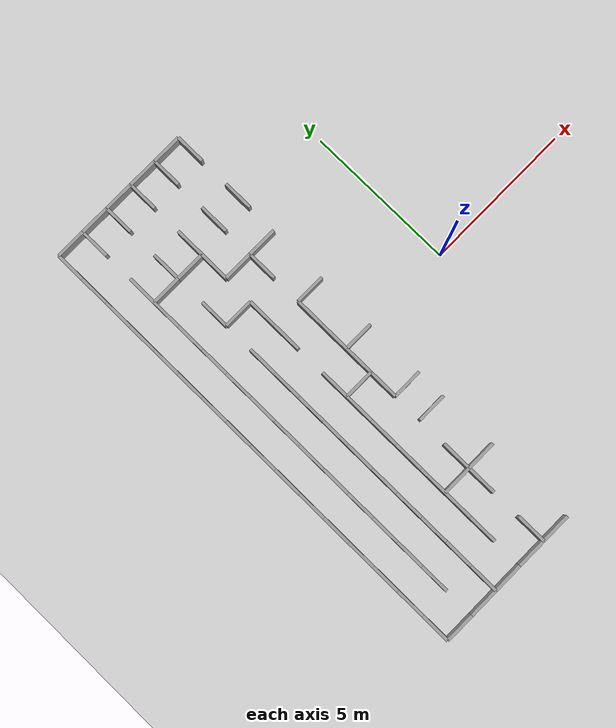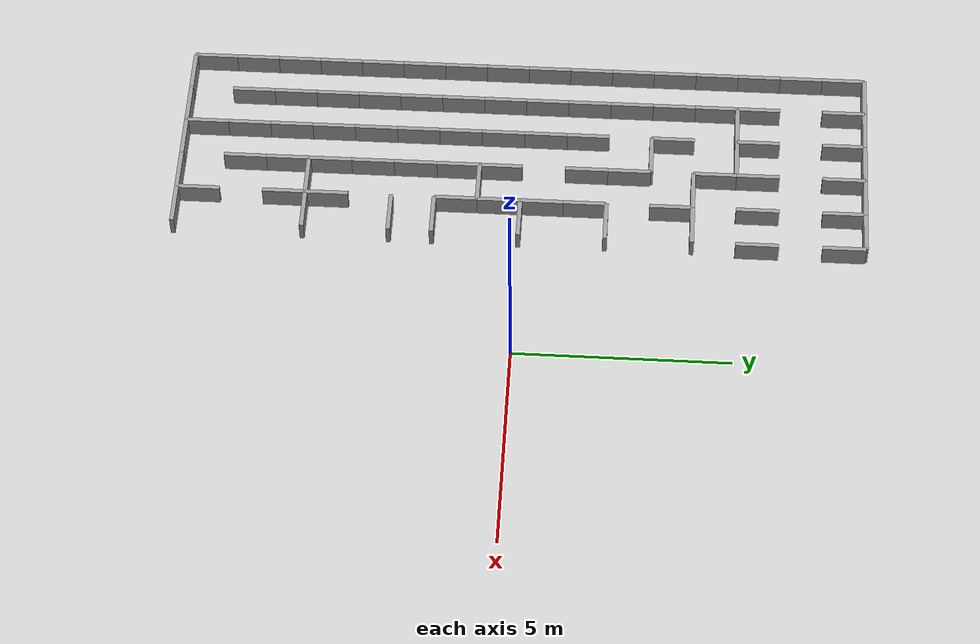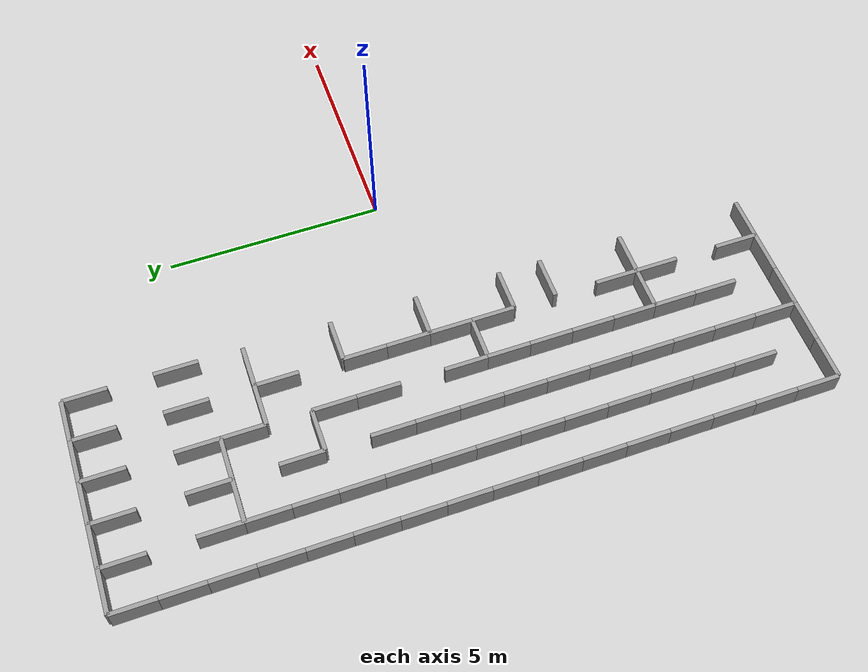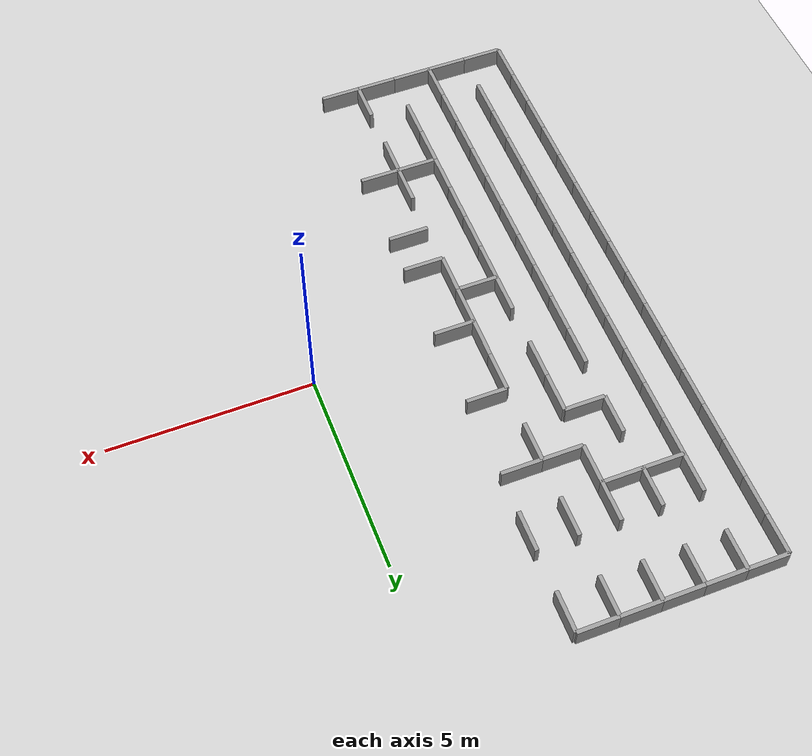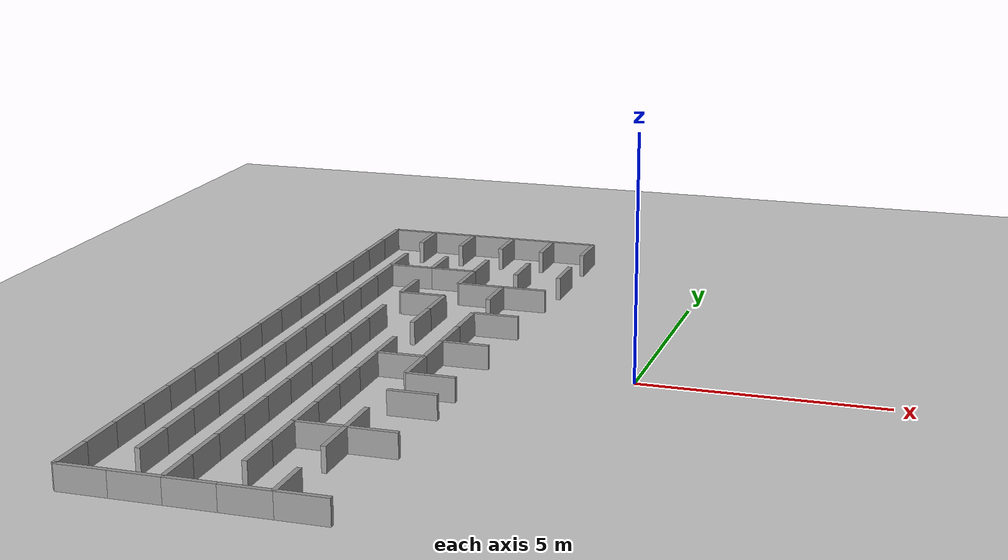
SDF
<sdf version="1.7">
 <world name="maze_world">
  <include><uri>model://sun</uri></include>
  <include><uri>model://ground_plane</uri></include>
  <model name="wall_0">
   <static>true</static>
   <pose>-7.5 8.0 0.25 0 0 0</pose>
   <link name="link">
    <collision name="collision"><geometry><box><size>1.0 0.1 0.5</size></box></geometry></collision>
    <visual name="visual">
     <geometry><box><size>1.0 0.1 0.5</size></box></geometry>
     <material>
      <script><uri>file://media/materials/scripts/gazebo.material</uri><name>Gazebo/Grey</name></script>
     </material>
    </visual>
   </link>
  </model>
  <model name="wall_1">
   <static>true</static>
   <pose>-6.5 8.0 0.25 0 0 0</pose>
   <link name="link">
    <collision name="collision"><geometry><box><size>1.0 0.1 0.5</size></box></geometry></collision>
    <visual name="visual">
     <geometry><box><size>1.0 0.1 0.5</size></box></geometry>
     <material>
      <script><uri>file://media/materials/scripts/gazebo.material</uri><name>Gazebo/Grey</name></script>
     </material>
    </visual>
   </link>
  </model>
  <model name="wall_2">
   <static>true</static>
   <pose>-5.5 8.0 0.25 0 0 0</pose>
   <link name="link">
    <collision name="collision"><geometry><box><size>1.0 0.1 0.5</size></box></geometry></collision>
    <visual name="visual">
     <geometry><box><size>1.0 0.1 0.5</size></box></geometry>
     <material>
      <script><uri>file://media/materials/scripts/gazebo.material</uri><name>Gazebo/Grey</name></script>
     </material>
    </visual>
   </link>
  </model>
  <model name="wall_3">
   <static>true</static>
   <pose>-4.5 8.0 0.25 0 0 0</pose>
   <link name="link">
    <collision name="collision"><geometry><box><size>1.0 0.1 0.5</size></box></geometry></collision>
    <visual name="visual">
     <geometry><box><size>1.0 0.1 0.5</size></box></geometry>
     <material>
      <script><uri>file://media/materials/scripts/gazebo.material</uri><name>Gazebo/Grey</name></script>
     </material>
    </visual>
   </link>
  </model>
  <model name="wall_4">
   <static>true</static>
   <pose>-3.5 8.0 0.25 0 0 0</pose>
   <link name="link">
    <collision name="collision"><geometry><box><size>1.0 0.1 0.5</size></box></geometry></collision>
    <visual name="visual">
     <geometry><box><size>1.0 0.1 0.5</size></box></geometry>
     <material>
      <script><uri>file://media/materials/scripts/gazebo.material</uri><name>Gazebo/Grey</name></script>
     </material>
    </visual>
   </link>
  </model>
  <model name="wall_16">
   <static>true</static>
   <pose>-8.0 7.5 0.25 0 0 1.5707963267948966</pose>
   <link name="link">
    <collision name="collision"><geometry><box><size>1.0 0.1 0.5</size></box></geometry></collision>
    <visual name="visual">
     <geometry><box><size>1.0 0.1 0.5</size></box></geometry>
     <material>
      <script><uri>file://media/materials/scripts/gazebo.material</uri><name>Gazebo/Grey</name></script>
     </material>
    </visual>
   </link>
  </model>
  <model name="wall_17">
   <static>true</static>
   <pose>-7.0 7.5 0.25 0 0 1.5707963267948966</pose>
   <link name="link">
    <collision name="collision"><geometry><box><size>1.0 0.1 0.5</size></box></geometry></collision>
    <visual name="visual">
     <geometry><box><size>1.0 0.1 0.5</size></box></geometry>
     <material>
      <script><uri>file://media/materials/scripts/gazebo.material</uri><name>Gazebo/Grey</name></script>
     </material>
    </visual>
   </link>
  </model>
  <model name="wall_18">
   <static>true</static>
   <pose>-6.0 7.5 0.25 0 0 1.5707963267948966</pose>
   <link name="link">
    <collision name="collision"><geometry><box><size>1.0 0.1 0.5</size></box></geometry></collision>
    <visual name="visual">
     <geometry><box><size>1.0 0.1 0.5</size></box></geometry>
     <material>
      <script><uri>file://media/materials/scripts/gazebo.material</uri><name>Gazebo/Grey</name></script>
     </material>
    </visual>
   </link>
  </model>
  <model name="wall_19">
   <static>true</static>
   <pose>-5.0 7.5 0.25 0 0 1.5707963267948966</pose>
   <link name="link">
    <collision name="collision"><geometry><box><size>1.0 0.1 0.5</size></box></geometry></collision>
    <visual name="visual">
     <geometry><box><size>1.0 0.1 0.5</size></box></geometry>
     <material>
      <script><uri>file://media/materials/scripts/gazebo.material</uri><name>Gazebo/Grey</name></script>
     </material>
    </visual>
   </link>
  </model>
  <model name="wall_20">
   <static>true</static>
   <pose>-4.0 7.5 0.25 0 0 1.5707963267948966</pose>
   <link name="link">
    <collision name="collision"><geometry><box><size>1.0 0.1 0.5</size></box></geometry></collision>
    <visual name="visual">
     <geometry><box><size>1.0 0.1 0.5</size></box></geometry>
     <material>
      <script><uri>file://media/materials/scripts/gazebo.material</uri><name>Gazebo/Grey</name></script>
     </material>
    </visual>
   </link>
  </model>
  <model name="wall_21">
   <static>true</static>
   <pose>-3.0 7.5 0.25 0 0 1.5707963267948966</pose>
   <link name="link">
    <collision name="collision"><geometry><box><size>1.0 0.1 0.5</size></box></geometry></collision>
    <visual name="visual">
     <geometry><box><size>1.0 0.1 0.5</size></box></geometry>
     <material>
      <script><uri>file://media/materials/scripts/gazebo.material</uri><name>Gazebo/Grey</name></script>
     </material>
    </visual>
   </link>
  </model>
  <model name="wall_28">
   <static>true</static>
   <pose>-8.0 6.5 0.25 0 0 1.5707963267948966</pose>
   <link name="link">
    <collision name="collision"><geometry><box><size>1.0 0.1 0.5</size></box></geometry></collision>
    <visual name="visual">
     <geometry><box><size>1.0 0.1 0.5</size></box></geometry>
     <material>
      <script><uri>file://media/materials/scripts/gazebo.material</uri><name>Gazebo/Grey</name></script>
     </material>
    </visual>
   </link>
  </model>
  <model name="wall_36">
   <static>true</static>
   <pose>-8.0 5.5 0.25 0 0 1.5707963267948966</pose>
   <link name="link">
    <collision name="collision"><geometry><box><size>1.0 0.1 0.5</size></box></geometry></collision>
    <visual name="visual">
     <geometry><box><size>1.0 0.1 0.5</size></box></geometry>
     <material>
      <script><uri>file://media/materials/scripts/gazebo.material</uri><name>Gazebo/Grey</name></script>
     </material>
    </visual>
   </link>
  </model>
  <model name="wall_37">
   <static>true</static>
   <pose>-7.0 5.5 0.25 0 0 1.5707963267948966</pose>
   <link name="link">
    <collision name="collision"><geometry><box><size>1.0 0.1 0.5</size></box></geometry></collision>
    <visual name="visual">
     <geometry><box><size>1.0 0.1 0.5</size></box></geometry>
     <material>
      <script><uri>file://media/materials/scripts/gazebo.material</uri><name>Gazebo/Grey</name></script>
     </material>
    </visual>
   </link>
  </model>
  <model name="wall_38">
   <static>true</static>
   <pose>-6.0 5.5 0.25 0 0 1.5707963267948966</pose>
   <link name="link">
    <collision name="collision"><geometry><box><size>1.0 0.1 0.5</size></box></geometry></collision>
    <visual name="visual">
     <geometry><box><size>1.0 0.1 0.5</size></box></geometry>
     <material>
      <script><uri>file://media/materials/scripts/gazebo.material</uri><name>Gazebo/Grey</name></script>
     </material>
    </visual>
   </link>
  </model>
  <model name="wall_39">
   <static>true</static>
   <pose>-5.0 5.5 0.25 0 0 1.5707963267948966</pose>
   <link name="link">
    <collision name="collision"><geometry><box><size>1.0 0.1 0.5</size></box></geometry></collision>
    <visual name="visual">
     <geometry><box><size>1.0 0.1 0.5</size></box></geometry>
     <material>
      <script><uri>file://media/materials/scripts/gazebo.material</uri><name>Gazebo/Grey</name></script>
     </material>
    </visual>
   </link>
  </model>
  <model name="wall_40">
   <static>true</static>
   <pose>-4.0 5.5 0.25 0 0 1.5707963267948966</pose>
   <link name="link">
    <collision name="collision"><geometry><box><size>1.0 0.1 0.5</size></box></geometry></collision>
    <visual name="visual">
     <geometry><box><size>1.0 0.1 0.5</size></box></geometry>
     <material>
      <script><uri>file://media/materials/scripts/gazebo.material</uri><name>Gazebo/Grey</name></script>
     </material>
    </visual>
   </link>
  </model>
  <model name="wall_41">
   <static>true</static>
   <pose>-3.0 5.5 0.25 0 0 1.5707963267948966</pose>
   <link name="link">
    <collision name="collision"><geometry><box><size>1.0 0.1 0.5</size></box></geometry></collision>
    <visual name="visual">
     <geometry><box><size>1.0 0.1 0.5</size></box></geometry>
     <material>
      <script><uri>file://media/materials/scripts/gazebo.material</uri><name>Gazebo/Grey</name></script>
     </material>
    </visual>
   </link>
  </model>
  <model name="wall_48">
   <static>true</static>
   <pose>-6.5 5.0 0.25 0 0 0</pose>
   <link name="link">
    <collision name="collision"><geometry><box><size>1.0 0.1 0.5</size></box></geometry></collision>
    <visual name="visual">
     <geometry><box><size>1.0 0.1 0.5</size></box></geometry>
     <material>
      <script><uri>file://media/materials/scripts/gazebo.material</uri><name>Gazebo/Grey</name></script>
     </material>
    </visual>
   </link>
  </model>
  <model name="wall_49">
   <static>true</static>
   <pose>-5.5 5.0 0.25 0 0 0</pose>
   <link name="link">
    <collision name="collision"><geometry><box><size>1.0 0.1 0.5</size></box></geometry></collision>
    <visual name="visual">
     <geometry><box><size>1.0 0.1 0.5</size></box></geometry>
     <material>
      <script><uri>file://media/materials/scripts/gazebo.material</uri><name>Gazebo/Grey</name></script>
     </material>
    </visual>
   </link>
  </model>
  <model name="wall_54">
   <static>true</static>
   <pose>-8.0 4.5 0.25 0 0 1.5707963267948966</pose>
   <link name="link">
    <collision name="collision"><geometry><box><size>1.0 0.1 0.5</size></box></geometry></collision>
    <visual name="visual">
     <geometry><box><size>1.0 0.1 0.5</size></box></geometry>
     <material>
      <script><uri>file://media/materials/scripts/gazebo.material</uri><name>Gazebo/Grey</name></script>
     </material>
    </visual>
   </link>
  </model>
  <model name="wall_55">
   <static>true</static>
   <pose>-7.0 4.5 0.25 0 0 1.5707963267948966</pose>
   <link name="link">
    <collision name="collision"><geometry><box><size>1.0 0.1 0.5</size></box></geometry></collision>
    <visual name="visual">
     <geometry><box><size>1.0 0.1 0.5</size></box></geometry>
     <material>
      <script><uri>file://media/materials/scripts/gazebo.material</uri><name>Gazebo/Grey</name></script>
     </material>
    </visual>
   </link>
  </model>
  <model name="wall_56">
   <static>true</static>
   <pose>-5.0 4.5 0.25 0 0 1.5707963267948966</pose>
   <link name="link">
    <collision name="collision"><geometry><box><size>1.0 0.1 0.5</size></box></geometry></collision>
    <visual name="visual">
     <geometry><box><size>1.0 0.1 0.5</size></box></geometry>
     <material>
      <script><uri>file://media/materials/scripts/gazebo.material</uri><name>Gazebo/Grey</name></script>
     </material>
    </visual>
   </link>
  </model>
  <model name="wall_64">
   <static>true</static>
   <pose>-4.5 4.0 0.25 0 0 0</pose>
   <link name="link">
    <collision name="collision"><geometry><box><size>1.0 0.1 0.5</size></box></geometry></collision>
    <visual name="visual">
     <geometry><box><size>1.0 0.1 0.5</size></box></geometry>
     <material>
      <script><uri>file://media/materials/scripts/gazebo.material</uri><name>Gazebo/Grey</name></script>
     </material>
    </visual>
   </link>
  </model>
  <model name="wall_65">
   <static>true</static>
   <pose>-3.5 4.0 0.25 0 0 0</pose>
   <link name="link">
    <collision name="collision"><geometry><box><size>1.0 0.1 0.5</size></box></geometry></collision>
    <visual name="visual">
     <geometry><box><size>1.0 0.1 0.5</size></box></geometry>
     <material>
      <script><uri>file://media/materials/scripts/gazebo.material</uri><name>Gazebo/Grey</name></script>
     </material>
    </visual>
   </link>
  </model>
  <model name="wall_72">
   <static>true</static>
   <pose>-8.0 3.5 0.25 0 0 1.5707963267948966</pose>
   <link name="link">
    <collision name="collision"><geometry><box><size>1.0 0.1 0.5</size></box></geometry></collision>
    <visual name="visual">
     <geometry><box><size>1.0 0.1 0.5</size></box></geometry>
     <material>
      <script><uri>file://media/materials/scripts/gazebo.material</uri><name>Gazebo/Grey</name></script>
     </material>
    </visual>
   </link>
  </model>
  <model name="wall_73">
   <static>true</static>
   <pose>-7.0 3.5 0.25 0 0 1.5707963267948966</pose>
   <link name="link">
    <collision name="collision"><geometry><box><size>1.0 0.1 0.5</size></box></geometry></collision>
    <visual name="visual">
     <geometry><box><size>1.0 0.1 0.5</size></box></geometry>
     <material>
      <script><uri>file://media/materials/scripts/gazebo.material</uri><name>Gazebo/Grey</name></script>
     </material>
    </visual>
   </link>
  </model>
  <model name="wall_74">
   <static>true</static>
   <pose>-6.0 3.5 0.25 0 0 1.5707963267948966</pose>
   <link name="link">
    <collision name="collision"><geometry><box><size>1.0 0.1 0.5</size></box></geometry></collision>
    <visual name="visual">
     <geometry><box><size>1.0 0.1 0.5</size></box></geometry>
     <material>
      <script><uri>file://media/materials/scripts/gazebo.material</uri><name>Gazebo/Grey</name></script>
     </material>
    </visual>
   </link>
  </model>
  <model name="wall_75">
   <static>true</static>
   <pose>-4.0 3.5 0.25 0 0 1.5707963267948966</pose>
   <link name="link">
    <collision name="collision"><geometry><box><size>1.0 0.1 0.5</size></box></geometry></collision>
    <visual name="visual">
     <geometry><box><size>1.0 0.1 0.5</size></box></geometry>
     <material>
      <script><uri>file://media/materials/scripts/gazebo.material</uri><name>Gazebo/Grey</name></script>
     </material>
    </visual>
   </link>
  </model>
  <model name="wall_82">
   <static>true</static>
   <pose>-5.5 3.0 0.25 0 0 0</pose>
   <link name="link">
    <collision name="collision"><geometry><box><size>1.0 0.1 0.5</size></box></geometry></collision>
    <visual name="visual">
     <geometry><box><size>1.0 0.1 0.5</size></box></geometry>
     <material>
      <script><uri>file://media/materials/scripts/gazebo.material</uri><name>Gazebo/Grey</name></script>
     </material>
    </visual>
   </link>
  </model>
  <model name="wall_86">
   <static>true</static>
   <pose>-8.0 2.5 0.25 0 0 1.5707963267948966</pose>
   <link name="link">
    <collision name="collision"><geometry><box><size>1.0 0.1 0.5</size></box></geometry></collision>
    <visual name="visual">
     <geometry><box><size>1.0 0.1 0.5</size></box></geometry>
     <material>
      <script><uri>file://media/materials/scripts/gazebo.material</uri><name>Gazebo/Grey</name></script>
     </material>
    </visual>
   </link>
  </model>
  <model name="wall_87">
   <static>true</static>
   <pose>-7.0 2.5 0.25 0 0 1.5707963267948966</pose>
   <link name="link">
    <collision name="collision"><geometry><box><size>1.0 0.1 0.5</size></box></geometry></collision>
    <visual name="visual">
     <geometry><box><size>1.0 0.1 0.5</size></box></geometry>
     <material>
      <script><uri>file://media/materials/scripts/gazebo.material</uri><name>Gazebo/Grey</name></script>
     </material>
    </visual>
   </link>
  </model>
  <model name="wall_88">
   <static>true</static>
   <pose>-5.0 2.5 0.25 0 0 1.5707963267948966</pose>
   <link name="link">
    <collision name="collision"><geometry><box><size>1.0 0.1 0.5</size></box></geometry></collision>
    <visual name="visual">
     <geometry><box><size>1.0 0.1 0.5</size></box></geometry>
     <material>
      <script><uri>file://media/materials/scripts/gazebo.material</uri><name>Gazebo/Grey</name></script>
     </material>
    </visual>
   </link>
  </model>
  <model name="wall_95">
   <static>true</static>
   <pose>-3.5 2.0 0.25 0 0 0</pose>
   <link name="link">
    <collision name="collision"><geometry><box><size>1.0 0.1 0.5</size></box></geometry></collision>
    <visual name="visual">
     <geometry><box><size>1.0 0.1 0.5</size></box></geometry>
     <material>
      <script><uri>file://media/materials/scripts/gazebo.material</uri><name>Gazebo/Grey</name></script>
     </material>
    </visual>
   </link>
  </model>
  <model name="wall_104">
   <static>true</static>
   <pose>-8.0 1.5 0.25 0 0 1.5707963267948966</pose>
   <link name="link">
    <collision name="collision"><geometry><box><size>1.0 0.1 0.5</size></box></geometry></collision>
    <visual name="visual">
     <geometry><box><size>1.0 0.1 0.5</size></box></geometry>
     <material>
      <script><uri>file://media/materials/scripts/gazebo.material</uri><name>Gazebo/Grey</name></script>
     </material>
    </visual>
   </link>
  </model>
  <model name="wall_105">
   <static>true</static>
   <pose>-7.0 1.5 0.25 0 0 1.5707963267948966</pose>
   <link name="link">
    <collision name="collision"><geometry><box><size>1.0 0.1 0.5</size></box></geometry></collision>
    <visual name="visual">
     <geometry><box><size>1.0 0.1 0.5</size></box></geometry>
     <material>
      <script><uri>file://media/materials/scripts/gazebo.material</uri><name>Gazebo/Grey</name></script>
     </material>
    </visual>
   </link>
  </model>
  <model name="wall_106">
   <static>true</static>
   <pose>-6.0 1.5 0.25 0 0 1.5707963267948966</pose>
   <link name="link">
    <collision name="collision"><geometry><box><size>1.0 0.1 0.5</size></box></geometry></collision>
    <visual name="visual">
     <geometry><box><size>1.0 0.1 0.5</size></box></geometry>
     <material>
      <script><uri>file://media/materials/scripts/gazebo.material</uri><name>Gazebo/Grey</name></script>
     </material>
    </visual>
   </link>
  </model>
  <model name="wall_107">
   <static>true</static>
   <pose>-5.0 1.5 0.25 0 0 1.5707963267948966</pose>
   <link name="link">
    <collision name="collision"><geometry><box><size>1.0 0.1 0.5</size></box></geometry></collision>
    <visual name="visual">
     <geometry><box><size>1.0 0.1 0.5</size></box></geometry>
     <material>
      <script><uri>file://media/materials/scripts/gazebo.material</uri><name>Gazebo/Grey</name></script>
     </material>
    </visual>
   </link>
  </model>
  <model name="wall_108">
   <static>true</static>
   <pose>-4.0 1.5 0.25 0 0 1.5707963267948966</pose>
   <link name="link">
    <collision name="collision"><geometry><box><size>1.0 0.1 0.5</size></box></geometry></collision>
    <visual name="visual">
     <geometry><box><size>1.0 0.1 0.5</size></box></geometry>
     <material>
      <script><uri>file://media/materials/scripts/gazebo.material</uri><name>Gazebo/Grey</name></script>
     </material>
    </visual>
   </link>
  </model>
  <model name="wall_118">
   <static>true</static>
   <pose>-8.0 0.5 0.25 0 0 1.5707963267948966</pose>
   <link name="link">
    <collision name="collision"><geometry><box><size>1.0 0.1 0.5</size></box></geometry></collision>
    <visual name="visual">
     <geometry><box><size>1.0 0.1 0.5</size></box></geometry>
     <material>
      <script><uri>file://media/materials/scripts/gazebo.material</uri><name>Gazebo/Grey</name></script>
     </material>
    </visual>
   </link>
  </model>
  <model name="wall_119">
   <static>true</static>
   <pose>-7.0 0.5 0.25 0 0 1.5707963267948966</pose>
   <link name="link">
    <collision name="collision"><geometry><box><size>1.0 0.1 0.5</size></box></geometry></collision>
    <visual name="visual">
     <geometry><box><size>1.0 0.1 0.5</size></box></geometry>
     <material>
      <script><uri>file://media/materials/scripts/gazebo.material</uri><name>Gazebo/Grey</name></script>
     </material>
    </visual>
   </link>
  </model>
  <model name="wall_120">
   <static>true</static>
   <pose>-6.0 0.5 0.25 0 0 1.5707963267948966</pose>
   <link name="link">
    <collision name="collision"><geometry><box><size>1.0 0.1 0.5</size></box></geometry></collision>
    <visual name="visual">
     <geometry><box><size>1.0 0.1 0.5</size></box></geometry>
     <material>
      <script><uri>file://media/materials/scripts/gazebo.material</uri><name>Gazebo/Grey</name></script>
     </material>
    </visual>
   </link>
  </model>
  <model name="wall_121">
   <static>true</static>
   <pose>-4.0 0.5 0.25 0 0 1.5707963267948966</pose>
   <link name="link">
    <collision name="collision"><geometry><box><size>1.0 0.1 0.5</size></box></geometry></collision>
    <visual name="visual">
     <geometry><box><size>1.0 0.1 0.5</size></box></geometry>
     <material>
      <script><uri>file://media/materials/scripts/gazebo.material</uri><name>Gazebo/Grey</name></script>
     </material>
    </visual>
   </link>
  </model>
  <model name="wall_129">
   <static>true</static>
   <pose>-3.5 0.0 0.25 0 0 0</pose>
   <link name="link">
    <collision name="collision"><geometry><box><size>1.0 0.1 0.5</size></box></geometry></collision>
    <visual name="visual">
     <geometry><box><size>1.0 0.1 0.5</size></box></geometry>
     <material>
      <script><uri>file://media/materials/scripts/gazebo.material</uri><name>Gazebo/Grey</name></script>
     </material>
    </visual>
   </link>
  </model>
  <model name="wall_135">
   <static>true</static>
   <pose>-8.0 -0.5 0.25 0 0 1.5707963267948966</pose>
   <link name="link">
    <collision name="collision"><geometry><box><size>1.0 0.1 0.5</size></box></geometry></collision>
    <visual name="visual">
     <geometry><box><size>1.0 0.1 0.5</size></box></geometry>
     <material>
      <script><uri>file://media/materials/scripts/gazebo.material</uri><name>Gazebo/Grey</name></script>
     </material>
    </visual>
   </link>
  </model>
  <model name="wall_136">
   <static>true</static>
   <pose>-7.0 -0.5 0.25 0 0 1.5707963267948966</pose>
   <link name="link">
    <collision name="collision"><geometry><box><size>1.0 0.1 0.5</size></box></geometry></collision>
    <visual name="visual">
     <geometry><box><size>1.0 0.1 0.5</size></box></geometry>
     <material>
      <script><uri>file://media/materials/scripts/gazebo.material</uri><name>Gazebo/Grey</name></script>
     </material>
    </visual>
   </link>
  </model>
  <model name="wall_137">
   <static>true</static>
   <pose>-6.0 -0.5 0.25 0 0 1.5707963267948966</pose>
   <link name="link">
    <collision name="collision"><geometry><box><size>1.0 0.1 0.5</size></box></geometry></collision>
    <visual name="visual">
     <geometry><box><size>1.0 0.1 0.5</size></box></geometry>
     <material>
      <script><uri>file://media/materials/scripts/gazebo.material</uri><name>Gazebo/Grey</name></script>
     </material>
    </visual>
   </link>
  </model>
  <model name="wall_138">
   <static>true</static>
   <pose>-5.0 -0.5 0.25 0 0 1.5707963267948966</pose>
   <link name="link">
    <collision name="collision"><geometry><box><size>1.0 0.1 0.5</size></box></geometry></collision>
    <visual name="visual">
     <geometry><box><size>1.0 0.1 0.5</size></box></geometry>
     <material>
      <script><uri>file://media/materials/scripts/gazebo.material</uri><name>Gazebo/Grey</name></script>
     </material>
    </visual>
   </link>
  </model>
  <model name="wall_139">
   <static>true</static>
   <pose>-4.0 -0.5 0.25 0 0 1.5707963267948966</pose>
   <link name="link">
    <collision name="collision"><geometry><box><size>1.0 0.1 0.5</size></box></geometry></collision>
    <visual name="visual">
     <geometry><box><size>1.0 0.1 0.5</size></box></geometry>
     <material>
      <script><uri>file://media/materials/scripts/gazebo.material</uri><name>Gazebo/Grey</name></script>
     </material>
    </visual>
   </link>
  </model>
  <model name="wall_145">
   <static>true</static>
   <pose>-4.5 -1.0 0.25 0 0 0</pose>
   <link name="link">
    <collision name="collision"><geometry><box><size>1.0 0.1 0.5</size></box></geometry></collision>
    <visual name="visual">
     <geometry><box><size>1.0 0.1 0.5</size></box></geometry>
     <material>
      <script><uri>file://media/materials/scripts/gazebo.material</uri><name>Gazebo/Grey</name></script>
     </material>
    </visual>
   </link>
  </model>
  <model name="wall_151">
   <static>true</static>
   <pose>-8.0 -1.5 0.25 0 0 1.5707963267948966</pose>
   <link name="link">
    <collision name="collision"><geometry><box><size>1.0 0.1 0.5</size></box></geometry></collision>
    <visual name="visual">
     <geometry><box><size>1.0 0.1 0.5</size></box></geometry>
     <material>
      <script><uri>file://media/materials/scripts/gazebo.material</uri><name>Gazebo/Grey</name></script>
     </material>
    </visual>
   </link>
  </model>
  <model name="wall_152">
   <static>true</static>
   <pose>-7.0 -1.5 0.25 0 0 1.5707963267948966</pose>
   <link name="link">
    <collision name="collision"><geometry><box><size>1.0 0.1 0.5</size></box></geometry></collision>
    <visual name="visual">
     <geometry><box><size>1.0 0.1 0.5</size></box></geometry>
     <material>
      <script><uri>file://media/materials/scripts/gazebo.material</uri><name>Gazebo/Grey</name></script>
     </material>
    </visual>
   </link>
  </model>
  <model name="wall_153">
   <static>true</static>
   <pose>-6.0 -1.5 0.25 0 0 1.5707963267948966</pose>
   <link name="link">
    <collision name="collision"><geometry><box><size>1.0 0.1 0.5</size></box></geometry></collision>
    <visual name="visual">
     <geometry><box><size>1.0 0.1 0.5</size></box></geometry>
     <material>
      <script><uri>file://media/materials/scripts/gazebo.material</uri><name>Gazebo/Grey</name></script>
     </material>
    </visual>
   </link>
  </model>
  <model name="wall_154">
   <static>true</static>
   <pose>-5.0 -1.5 0.25 0 0 1.5707963267948966</pose>
   <link name="link">
    <collision name="collision"><geometry><box><size>1.0 0.1 0.5</size></box></geometry></collision>
    <visual name="visual">
     <geometry><box><size>1.0 0.1 0.5</size></box></geometry>
     <material>
      <script><uri>file://media/materials/scripts/gazebo.material</uri><name>Gazebo/Grey</name></script>
     </material>
    </visual>
   </link>
  </model>
  <model name="wall_155">
   <static>true</static>
   <pose>-4.0 -1.5 0.25 0 0 1.5707963267948966</pose>
   <link name="link">
    <collision name="collision"><geometry><box><size>1.0 0.1 0.5</size></box></geometry></collision>
    <visual name="visual">
     <geometry><box><size>1.0 0.1 0.5</size></box></geometry>
     <material>
      <script><uri>file://media/materials/scripts/gazebo.material</uri><name>Gazebo/Grey</name></script>
     </material>
    </visual>
   </link>
  </model>
  <model name="wall_161">
   <static>true</static>
   <pose>-3.5 -2.0 0.25 0 0 0</pose>
   <link name="link">
    <collision name="collision"><geometry><box><size>1.0 0.1 0.5</size></box></geometry></collision>
    <visual name="visual">
     <geometry><box><size>1.0 0.1 0.5</size></box></geometry>
     <material>
      <script><uri>file://media/materials/scripts/gazebo.material</uri><name>Gazebo/Grey</name></script>
     </material>
    </visual>
   </link>
  </model>
  <model name="wall_169">
   <static>true</static>
   <pose>-8.0 -2.5 0.25 0 0 1.5707963267948966</pose>
   <link name="link">
    <collision name="collision"><geometry><box><size>1.0 0.1 0.5</size></box></geometry></collision>
    <visual name="visual">
     <geometry><box><size>1.0 0.1 0.5</size></box></geometry>
     <material>
      <script><uri>file://media/materials/scripts/gazebo.material</uri><name>Gazebo/Grey</name></script>
     </material>
    </visual>
   </link>
  </model>
  <model name="wall_170">
   <static>true</static>
   <pose>-7.0 -2.5 0.25 0 0 1.5707963267948966</pose>
   <link name="link">
    <collision name="collision"><geometry><box><size>1.0 0.1 0.5</size></box></geometry></collision>
    <visual name="visual">
     <geometry><box><size>1.0 0.1 0.5</size></box></geometry>
     <material>
      <script><uri>file://media/materials/scripts/gazebo.material</uri><name>Gazebo/Grey</name></script>
     </material>
    </visual>
   </link>
  </model>
  <model name="wall_171">
   <static>true</static>
   <pose>-6.0 -2.5 0.25 0 0 1.5707963267948966</pose>
   <link name="link">
    <collision name="collision"><geometry><box><size>1.0 0.1 0.5</size></box></geometry></collision>
    <visual name="visual">
     <geometry><box><size>1.0 0.1 0.5</size></box></geometry>
     <material>
      <script><uri>file://media/materials/scripts/gazebo.material</uri><name>Gazebo/Grey</name></script>
     </material>
    </visual>
   </link>
  </model>
  <model name="wall_172">
   <static>true</static>
   <pose>-5.0 -2.5 0.25 0 0 1.5707963267948966</pose>
   <link name="link">
    <collision name="collision"><geometry><box><size>1.0 0.1 0.5</size></box></geometry></collision>
    <visual name="visual">
     <geometry><box><size>1.0 0.1 0.5</size></box></geometry>
     <material>
      <script><uri>file://media/materials/scripts/gazebo.material</uri><name>Gazebo/Grey</name></script>
     </material>
    </visual>
   </link>
  </model>
  <model name="wall_179">
   <static>true</static>
   <pose>-3.5 -3.0 0.25 0 0 0</pose>
   <link name="link">
    <collision name="collision"><geometry><box><size>1.0 0.1 0.5</size></box></geometry></collision>
    <visual name="visual">
     <geometry><box><size>1.0 0.1 0.5</size></box></geometry>
     <material>
      <script><uri>file://media/materials/scripts/gazebo.material</uri><name>Gazebo/Grey</name></script>
     </material>
    </visual>
   </link>
  </model>
  <model name="wall_183">
   <static>true</static>
   <pose>-8.0 -3.5 0.25 0 0 1.5707963267948966</pose>
   <link name="link">
    <collision name="collision"><geometry><box><size>1.0 0.1 0.5</size></box></geometry></collision>
    <visual name="visual">
     <geometry><box><size>1.0 0.1 0.5</size></box></geometry>
     <material>
      <script><uri>file://media/materials/scripts/gazebo.material</uri><name>Gazebo/Grey</name></script>
     </material>
    </visual>
   </link>
  </model>
  <model name="wall_184">
   <static>true</static>
   <pose>-7.0 -3.5 0.25 0 0 1.5707963267948966</pose>
   <link name="link">
    <collision name="collision"><geometry><box><size>1.0 0.1 0.5</size></box></geometry></collision>
    <visual name="visual">
     <geometry><box><size>1.0 0.1 0.5</size></box></geometry>
     <material>
      <script><uri>file://media/materials/scripts/gazebo.material</uri><name>Gazebo/Grey</name></script>
     </material>
    </visual>
   </link>
  </model>
  <model name="wall_185">
   <static>true</static>
   <pose>-6.0 -3.5 0.25 0 0 1.5707963267948966</pose>
   <link name="link">
    <collision name="collision"><geometry><box><size>1.0 0.1 0.5</size></box></geometry></collision>
    <visual name="visual">
     <geometry><box><size>1.0 0.1 0.5</size></box></geometry>
     <material>
      <script><uri>file://media/materials/scripts/gazebo.material</uri><name>Gazebo/Grey</name></script>
     </material>
    </visual>
   </link>
  </model>
  <model name="wall_186">
   <static>true</static>
   <pose>-5.0 -3.5 0.25 0 0 1.5707963267948966</pose>
   <link name="link">
    <collision name="collision"><geometry><box><size>1.0 0.1 0.5</size></box></geometry></collision>
    <visual name="visual">
     <geometry><box><size>1.0 0.1 0.5</size></box></geometry>
     <material>
      <script><uri>file://media/materials/scripts/gazebo.material</uri><name>Gazebo/Grey</name></script>
     </material>
    </visual>
   </link>
  </model>
  <model name="wall_198">
   <static>true</static>
   <pose>-8.0 -4.5 0.25 0 0 1.5707963267948966</pose>
   <link name="link">
    <collision name="collision"><geometry><box><size>1.0 0.1 0.5</size></box></geometry></collision>
    <visual name="visual">
     <geometry><box><size>1.0 0.1 0.5</size></box></geometry>
     <material>
      <script><uri>file://media/materials/scripts/gazebo.material</uri><name>Gazebo/Grey</name></script>
     </material>
    </visual>
   </link>
  </model>
  <model name="wall_199">
   <static>true</static>
   <pose>-7.0 -4.5 0.25 0 0 1.5707963267948966</pose>
   <link name="link">
    <collision name="collision"><geometry><box><size>1.0 0.1 0.5</size></box></geometry></collision>
    <visual name="visual">
     <geometry><box><size>1.0 0.1 0.5</size></box></geometry>
     <material>
      <script><uri>file://media/materials/scripts/gazebo.material</uri><name>Gazebo/Grey</name></script>
     </material>
    </visual>
   </link>
  </model>
  <model name="wall_200">
   <static>true</static>
   <pose>-6.0 -4.5 0.25 0 0 1.5707963267948966</pose>
   <link name="link">
    <collision name="collision"><geometry><box><size>1.0 0.1 0.5</size></box></geometry></collision>
    <visual name="visual">
     <geometry><box><size>1.0 0.1 0.5</size></box></geometry>
     <material>
      <script><uri>file://media/materials/scripts/gazebo.material</uri><name>Gazebo/Grey</name></script>
     </material>
    </visual>
   </link>
  </model>
  <model name="wall_201">
   <static>true</static>
   <pose>-5.0 -4.5 0.25 0 0 1.5707963267948966</pose>
   <link name="link">
    <collision name="collision"><geometry><box><size>1.0 0.1 0.5</size></box></geometry></collision>
    <visual name="visual">
     <geometry><box><size>1.0 0.1 0.5</size></box></geometry>
     <material>
      <script><uri>file://media/materials/scripts/gazebo.material</uri><name>Gazebo/Grey</name></script>
     </material>
    </visual>
   </link>
  </model>
  <model name="wall_202">
   <static>true</static>
   <pose>-4.0 -4.5 0.25 0 0 1.5707963267948966</pose>
   <link name="link">
    <collision name="collision"><geometry><box><size>1.0 0.1 0.5</size></box></geometry></collision>
    <visual name="visual">
     <geometry><box><size>1.0 0.1 0.5</size></box></geometry>
     <material>
      <script><uri>file://media/materials/scripts/gazebo.material</uri><name>Gazebo/Grey</name></script>
     </material>
    </visual>
   </link>
  </model>
  <model name="wall_211">
   <static>true</static>
   <pose>-4.5 -5.0 0.25 0 0 0</pose>
   <link name="link">
    <collision name="collision"><geometry><box><size>1.0 0.1 0.5</size></box></geometry></collision>
    <visual name="visual">
     <geometry><box><size>1.0 0.1 0.5</size></box></geometry>
     <material>
      <script><uri>file://media/materials/scripts/gazebo.material</uri><name>Gazebo/Grey</name></script>
     </material>
    </visual>
   </link>
  </model>
  <model name="wall_212">
   <static>true</static>
   <pose>-3.5 -5.0 0.25 0 0 0</pose>
   <link name="link">
    <collision name="collision"><geometry><box><size>1.0 0.1 0.5</size></box></geometry></collision>
    <visual name="visual">
     <geometry><box><size>1.0 0.1 0.5</size></box></geometry>
     <material>
      <script><uri>file://media/materials/scripts/gazebo.material</uri><name>Gazebo/Grey</name></script>
     </material>
    </visual>
   </link>
  </model>
  <model name="wall_217">
   <static>true</static>
   <pose>-8.0 -5.5 0.25 0 0 1.5707963267948966</pose>
   <link name="link">
    <collision name="collision"><geometry><box><size>1.0 0.1 0.5</size></box></geometry></collision>
    <visual name="visual">
     <geometry><box><size>1.0 0.1 0.5</size></box></geometry>
     <material>
      <script><uri>file://media/materials/scripts/gazebo.material</uri><name>Gazebo/Grey</name></script>
     </material>
    </visual>
   </link>
  </model>
  <model name="wall_218">
   <static>true</static>
   <pose>-7.0 -5.5 0.25 0 0 1.5707963267948966</pose>
   <link name="link">
    <collision name="collision"><geometry><box><size>1.0 0.1 0.5</size></box></geometry></collision>
    <visual name="visual">
     <geometry><box><size>1.0 0.1 0.5</size></box></geometry>
     <material>
      <script><uri>file://media/materials/scripts/gazebo.material</uri><name>Gazebo/Grey</name></script>
     </material>
    </visual>
   </link>
  </model>
  <model name="wall_219">
   <static>true</static>
   <pose>-6.0 -5.5 0.25 0 0 1.5707963267948966</pose>
   <link name="link">
    <collision name="collision"><geometry><box><size>1.0 0.1 0.5</size></box></geometry></collision>
    <visual name="visual">
     <geometry><box><size>1.0 0.1 0.5</size></box></geometry>
     <material>
      <script><uri>file://media/materials/scripts/gazebo.material</uri><name>Gazebo/Grey</name></script>
     </material>
    </visual>
   </link>
  </model>
  <model name="wall_220">
   <static>true</static>
   <pose>-5.0 -5.5 0.25 0 0 1.5707963267948966</pose>
   <link name="link">
    <collision name="collision"><geometry><box><size>1.0 0.1 0.5</size></box></geometry></collision>
    <visual name="visual">
     <geometry><box><size>1.0 0.1 0.5</size></box></geometry>
     <material>
      <script><uri>file://media/materials/scripts/gazebo.material</uri><name>Gazebo/Grey</name></script>
     </material>
    </visual>
   </link>
  </model>
  <model name="wall_221">
   <static>true</static>
   <pose>-4.0 -5.5 0.25 0 0 1.5707963267948966</pose>
   <link name="link">
    <collision name="collision"><geometry><box><size>1.0 0.1 0.5</size></box></geometry></collision>
    <visual name="visual">
     <geometry><box><size>1.0 0.1 0.5</size></box></geometry>
     <material>
      <script><uri>file://media/materials/scripts/gazebo.material</uri><name>Gazebo/Grey</name></script>
     </material>
    </visual>
   </link>
  </model>
  <model name="wall_232">
   <static>true</static>
   <pose>-8.0 -6.5 0.25 0 0 1.5707963267948966</pose>
   <link name="link">
    <collision name="collision"><geometry><box><size>1.0 0.1 0.5</size></box></geometry></collision>
    <visual name="visual">
     <geometry><box><size>1.0 0.1 0.5</size></box></geometry>
     <material>
      <script><uri>file://media/materials/scripts/gazebo.material</uri><name>Gazebo/Grey</name></script>
     </material>
    </visual>
   </link>
  </model>
  <model name="wall_233">
   <static>true</static>
   <pose>-7.0 -6.5 0.25 0 0 1.5707963267948966</pose>
   <link name="link">
    <collision name="collision"><geometry><box><size>1.0 0.1 0.5</size></box></geometry></collision>
    <visual name="visual">
     <geometry><box><size>1.0 0.1 0.5</size></box></geometry>
     <material>
      <script><uri>file://media/materials/scripts/gazebo.material</uri><name>Gazebo/Grey</name></script>
     </material>
    </visual>
   </link>
  </model>
  <model name="wall_234">
   <static>true</static>
   <pose>-6.0 -6.5 0.25 0 0 1.5707963267948966</pose>
   <link name="link">
    <collision name="collision"><geometry><box><size>1.0 0.1 0.5</size></box></geometry></collision>
    <visual name="visual">
     <geometry><box><size>1.0 0.1 0.5</size></box></geometry>
     <material>
      <script><uri>file://media/materials/scripts/gazebo.material</uri><name>Gazebo/Grey</name></script>
     </material>
    </visual>
   </link>
  </model>
  <model name="wall_235">
   <static>true</static>
   <pose>-5.0 -6.5 0.25 0 0 1.5707963267948966</pose>
   <link name="link">
    <collision name="collision"><geometry><box><size>1.0 0.1 0.5</size></box></geometry></collision>
    <visual name="visual">
     <geometry><box><size>1.0 0.1 0.5</size></box></geometry>
     <material>
      <script><uri>file://media/materials/scripts/gazebo.material</uri><name>Gazebo/Grey</name></script>
     </material>
    </visual>
   </link>
  </model>
  <model name="wall_244">
   <static>true</static>
   <pose>-8.0 -7.5 0.25 0 0 1.5707963267948966</pose>
   <link name="link">
    <collision name="collision"><geometry><box><size>1.0 0.1 0.5</size></box></geometry></collision>
    <visual name="visual">
     <geometry><box><size>1.0 0.1 0.5</size></box></geometry>
     <material>
      <script><uri>file://media/materials/scripts/gazebo.material</uri><name>Gazebo/Grey</name></script>
     </material>
    </visual>
   </link>
  </model>
  <model name="wall_245">
   <static>true</static>
   <pose>-6.0 -7.5 0.25 0 0 1.5707963267948966</pose>
   <link name="link">
    <collision name="collision"><geometry><box><size>1.0 0.1 0.5</size></box></geometry></collision>
    <visual name="visual">
     <geometry><box><size>1.0 0.1 0.5</size></box></geometry>
     <material>
      <script><uri>file://media/materials/scripts/gazebo.material</uri><name>Gazebo/Grey</name></script>
     </material>
    </visual>
   </link>
  </model>
  <model name="wall_246">
   <static>true</static>
   <pose>-4.0 -7.5 0.25 0 0 1.5707963267948966</pose>
   <link name="link">
    <collision name="collision"><geometry><box><size>1.0 0.1 0.5</size></box></geometry></collision>
    <visual name="visual">
     <geometry><box><size>1.0 0.1 0.5</size></box></geometry>
     <material>
      <script><uri>file://media/materials/scripts/gazebo.material</uri><name>Gazebo/Grey</name></script>
     </material>
    </visual>
   </link>
  </model>
  <model name="wall_253">
   <static>true</static>
   <pose>-7.5 -8.0 0.25 0 0 0</pose>
   <link name="link">
    <collision name="collision"><geometry><box><size>1.0 0.1 0.5</size></box></geometry></collision>
    <visual name="visual">
     <geometry><box><size>1.0 0.1 0.5</size></box></geometry>
     <material>
      <script><uri>file://media/materials/scripts/gazebo.material</uri><name>Gazebo/Grey</name></script>
     </material>
    </visual>
   </link>
  </model>
  <model name="wall_254">
   <static>true</static>
   <pose>-6.5 -8.0 0.25 0 0 0</pose>
   <link name="link">
    <collision name="collision"><geometry><box><size>1.0 0.1 0.5</size></box></geometry></collision>
    <visual name="visual">
     <geometry><box><size>1.0 0.1 0.5</size></box></geometry>
     <material>
      <script><uri>file://media/materials/scripts/gazebo.material</uri><name>Gazebo/Grey</name></script>
     </material>
    </visual>
   </link>
  </model>
  <model name="wall_255">
   <static>true</static>
   <pose>-5.5 -8.0 0.25 0 0 0</pose>
   <link name="link">
    <collision name="collision"><geometry><box><size>1.0 0.1 0.5</size></box></geometry></collision>
    <visual name="visual">
     <geometry><box><size>1.0 0.1 0.5</size></box></geometry>
     <material>
      <script><uri>file://media/materials/scripts/gazebo.material</uri><name>Gazebo/Grey</name></script>
     </material>
    </visual>
   </link>
  </model>
  <model name="wall_256">
   <static>true</static>
   <pose>-4.5 -8.0 0.25 0 0 0</pose>
   <link name="link">
    <collision name="collision"><geometry><box><size>1.0 0.1 0.5</size></box></geometry></collision>
    <visual name="visual">
     <geometry><box><size>1.0 0.1 0.5</size></box></geometry>
     <material>
      <script><uri>file://media/materials/scripts/gazebo.material</uri><name>Gazebo/Grey</name></script>
     </material>
    </visual>
   </link>
  </model>
  <model name="wall_257">
   <static>true</static>
   <pose>-3.5 -8.0 0.25 0 0 0</pose>
   <link name="link">
    <collision name="collision"><geometry><box><size>1.0 0.1 0.5</size></box></geometry></collision>
    <visual name="visual">
     <geometry><box><size>1.0 0.1 0.5</size></box></geometry>
     <material>
      <script><uri>file://media/materials/scripts/gazebo.material</uri><name>Gazebo/Grey</name></script>
     </material>
    </visual>
   </link>
  </model>
 </world>
</sdf>
